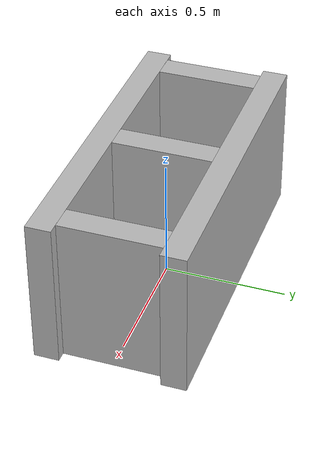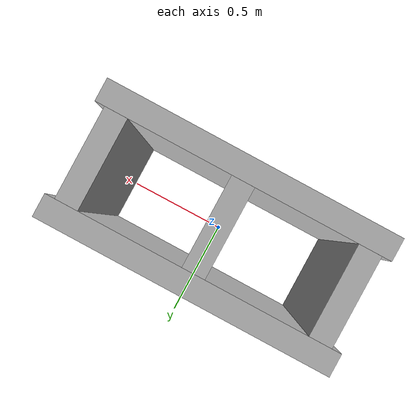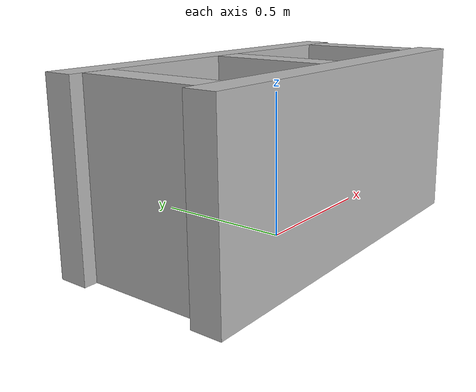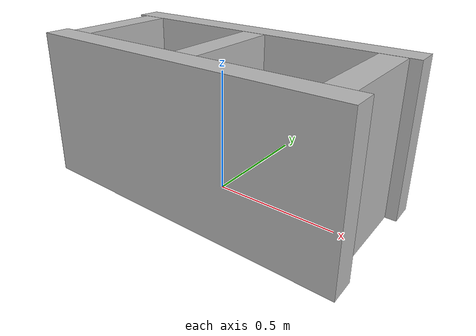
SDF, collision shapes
<?xml version="1.0" ?>
<sdf version="1.5">
  <model name="mossy_cinder_block">
    <link name="link">
      <inertial>
        <pose>0 0 0.1016 0 0 0</pose>
        <!-- volume about 0.0085 m^3, density 2000 kg/m^3 -->
        <mass>5</mass>
        <!-- approximate as uniform box 0.37 x 0.17 x 0.20 m -->
        <inertia>
          <ixx>0.028705</ixx>
          <ixy>0.0000</ixy>
          <iyy>0.073708</iyy>
          <ixz>0.0000</ixz>
          <iyz>0.0000</iyz>
          <izz>0.06908</izz>
        </inertia>
      </inertial>
      <visual name="visual">
        <geometry>
          <mesh>
            <scale>1.1 1.1 1.1</scale>
            <uri>model://mossy_cinder_block/meshes/mossy_cinder_block.dae</uri>
          </mesh>
        </geometry>
      </visual>
      <collision name="left">
        <pose>0 -0.25395 0.3048 0 0 0</pose>
        <geometry>
          <box>
            <size>1.30485 0.1017 0.6096</size>
          </box>
        </geometry>
        <surface>
          <contact>
            <ode>
              <max_vel>0.1</max_vel>
              <min_depth>0.001</min_depth>
            </ode>
          </contact>
          <friction>
            <ode>
              <mu>1.0</mu>
              <mu2>1.0</mu2>
            </ode>
          </friction>
        </surface>
      </collision>
      <collision name="right">
        <pose>0 0.25395 0.3048 0 0 0</pose>
        <geometry>
          <box>
            <size>1.30485 0.1017 0.6096</size>
          </box>
        </geometry>
        <surface>
          <contact>
            <ode>
              <max_vel>0.1</max_vel>
              <min_depth>0.001</min_depth>
            </ode>
          </contact>
          <friction>
            <ode>
              <mu>1.0</mu>
              <mu2>1.0</mu2>
            </ode>
          </friction>
        </surface>
      </collision>
      <collision name="front">
        <pose>0.55875 0 0.3048 0 0 0</pose>
        <geometry>
          <box>
            <size>0.1017 0.4062 0.609</size>
          </box>
        </geometry>
        <surface>
          <contact>
            <ode>
              <max_vel>0.1</max_vel>
              <min_depth>0.001</min_depth>
            </ode>
          </contact>
          <friction>
            <ode>
              <mu>1.0</mu>
              <mu2>1.0</mu2>
            </ode>
          </friction>
        </surface>
      </collision>
      <collision name="middle">
        <pose>0 0 0.3048 0 0 0</pose>
        <geometry>
          <box>
            <size>0.1017 0.4062 0.609</size>
          </box>
        </geometry>
        <surface>
          <contact>
            <ode>
              <max_vel>0.1</max_vel>
              <min_depth>0.001</min_depth>
            </ode>
          </contact>
          <friction>
            <ode>
              <mu>1.0</mu>
              <mu2>1.0</mu2>
            </ode>
          </friction>
        </surface>
      </collision>
      <collision name="back">
        <pose>-0.55875 0 0.3048 0 0 0</pose>
        <geometry>
          <box>
            <size>0.1017 0.4062 0.609</size>
          </box>
        </geometry>
        <surface>
          <contact>
            <ode>
              <max_vel>0.1</max_vel>
              <min_depth>0.001</min_depth>
            </ode>
          </contact>
          <friction>
            <ode>
              <mu>1.0</mu>
              <mu2>1.0</mu2>
            </ode>
          </friction>
        </surface>
      </collision>
    </link>
  </model>
</sdf>
